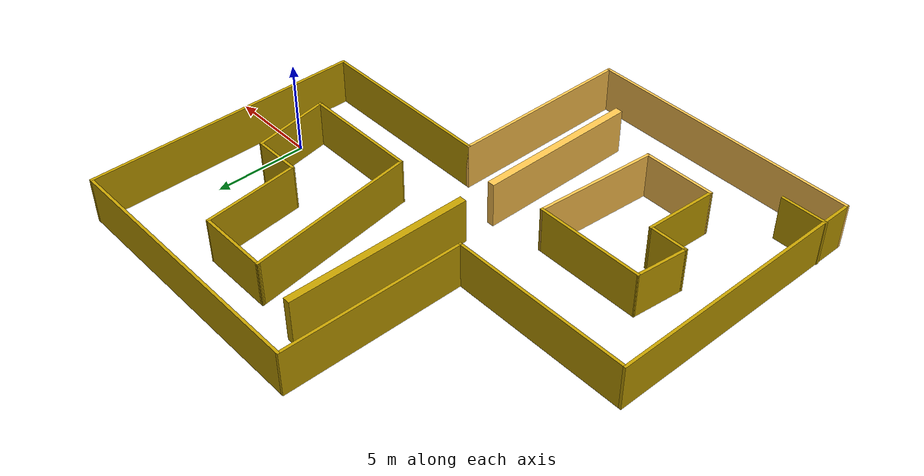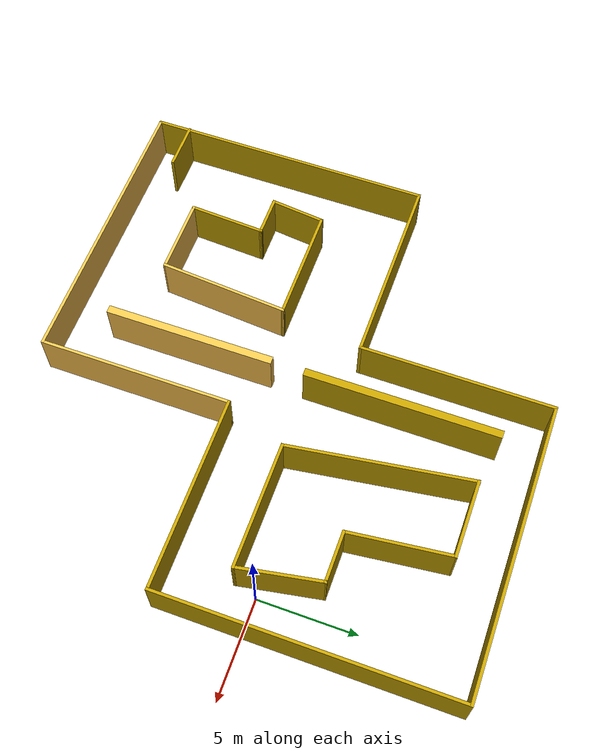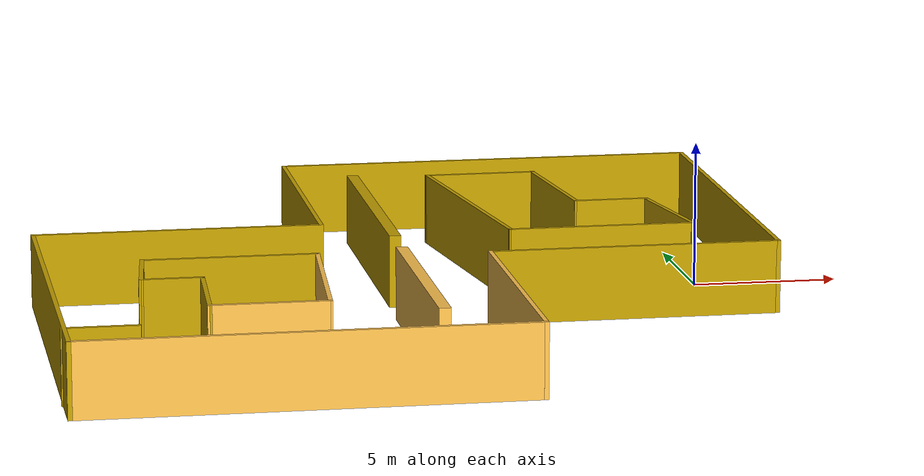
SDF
<?xml version='1.0'?>
<sdf version='1.6'>
  <model name='ext_wall_half'>
    <pose frame=''>-10.5024 -1.85284 0 0 -0 0</pose>
    <link name='Wall_1'>
      <collision name='Wall_1_Collision'>
        <geometry>
          <box>
            <size>15 0.15 2.5</size>
          </box>
        </geometry>
        <pose frame=''>0 0 1.25 0 -0 0</pose>
      </collision>
      <visual name='Wall_1_Visual'>
        <pose frame=''>0 0 1.25 0 -0 0</pose>
        <geometry>
          <box>
            <size>15 0.15 2.5</size>
          </box>
        </geometry>
        <material>
          <script>
            <uri>file://media/materials/scripts/gazebo.material</uri>
            <name>Gazebo/Grey</name>
          </script>
          <ambient>0.768627 0.627451 0 1</ambient>
        </material>
        <meta>
          <layer>0</layer>
        </meta>
      </visual>
      <pose frame=''>-12.3293 -4.92505 0 0 -0 -1.57076</pose>
    </link>
    <link name='Wall_10'>
      <collision name='Wall_10_Collision'>
        <geometry>
          <box>
            <size>10 0.15 2.5</size>
          </box>
        </geometry>
        <pose frame=''>0 0 1.25 0 -0 0</pose>
      </collision>
      <visual name='Wall_10_Visual'>
        <pose frame=''>0 0 1.25 0 -0 0</pose>
        <geometry>
          <box>
            <size>10 0.15 2.5</size>
          </box>
        </geometry>
        <material>
          <script>
            <uri>file://media/materials/scripts/gazebo.material</uri>
            <name>Gazebo/Grey</name>
          </script>
          <ambient>0.768627 0.627451 0 1</ambient>
        </material>
        <meta>
          <layer>0</layer>
        </meta>
      </visual>
      <pose frame=''>-2.47957 7.42484 0 0 -0 -1.5708</pose>
    </link>
    <link name='Wall_11'>
      <collision name='Wall_11_Collision'>
        <geometry>
          <box>
            <size>10 0.15 2.5</size>
          </box>
        </geometry>
        <pose frame=''>0 0 1.25 0 -0 0</pose>
      </collision>
      <visual name='Wall_11_Visual'>
        <pose frame=''>0 0 1.25 0 -0 0</pose>
        <geometry>
          <box>
            <size>10 0.15 2.5</size>
          </box>
        </geometry>
        <material>
          <script>
            <uri>file://media/materials/scripts/gazebo.material</uri>
            <name>Gazebo/Grey</name>
          </script>
          <ambient>0.768627 0.627451 0 1</ambient>
        </material>
        <meta>
          <layer>0</layer>
        </meta>
      </visual>
      <pose frame=''>-7.40456 2.49984 0 0 -0 3.14159</pose>
    </link>
    <link name='Wall_13'>
      <collision name='Wall_13_Collision'>
        <geometry>
          <box>
            <size>2.5 0.15 2.5</size>
          </box>
        </geometry>
        <pose frame=''>0 0 1.25 0 -0 0</pose>
      </collision>
      <visual name='Wall_13_Visual'>
        <pose frame=''>0 0 1.25 0 -0 0</pose>
        <geometry>
          <box>
            <size>2.5 0.15 2.5</size>
          </box>
        </geometry>
        <material>
          <script>
            <uri>file://media/materials/scripts/gazebo.material</uri>
            <name>Gazebo/Grey</name>
          </script>
          <ambient>0.768627 0.627451 0 1</ambient>
        </material>
        <meta>
          <layer>0</layer>
        </meta>
      </visual>
      <pose frame=''>-11.1959 -10.6578 0 0 -0 0</pose>
    </link>
    <link name='Wall_15'>
      <collision name='Wall_15_Collision'>
        <geometry>
          <box>
            <size>6 0.15 2.5</size>
          </box>
        </geometry>
        <pose frame=''>0 0 1.25 0 -0 0</pose>
      </collision>
      <visual name='Wall_15_Visual'>
        <pose frame=''>0 0 1.25 0 -0 0</pose>
        <geometry>
          <box>
            <size>6 0.15 2.5</size>
          </box>
        </geometry>
        <material>
          <script>
            <uri>file://media/materials/scripts/gazebo.material</uri>
            <name>Gazebo/Grey</name>
          </script>
          <ambient>0.768627 0.627451 0 1</ambient>
        </material>
        <meta>
          <layer>0</layer>
        </meta>
      </visual>
      <pose frame=''>-6.13327 -1.84354 0 0 -0 0</pose>
    </link>
    <link name='Wall_16'>
      <collision name='Wall_16_Collision'>
        <geometry>
          <box>
            <size>6.76891 0.15 2.5</size>
          </box>
        </geometry>
        <pose frame=''>0 0 1.25 0 -0 0</pose>
      </collision>
      <visual name='Wall_16_Visual'>
        <pose frame=''>0 0 1.25 0 -0 0</pose>
        <geometry>
          <box>
            <size>6.76891 0.15 2.5</size>
          </box>
        </geometry>
        <material>
          <script>
            <uri>file://media/materials/scripts/gazebo.material</uri>
            <name>Gazebo/Grey</name>
          </script>
          <ambient>1 0.764706 0.305882 1</ambient>
        </material>
        <meta>
          <layer>0</layer>
        </meta>
      </visual>
      <pose frame=''>-3.45827 -5.14354 0 0 -0 -1.64641</pose>
    </link>
    <link name='Wall_17'>
      <collision name='Wall_17_Collision'>
        <geometry>
          <box>
            <size>4 0.15 2.5</size>
          </box>
        </geometry>
        <pose frame=''>0 0 1.25 0 -0 0</pose>
      </collision>
      <visual name='Wall_17_Visual'>
        <pose frame=''>0 0 1.25 0 -0 0</pose>
        <geometry>
          <box>
            <size>4 0.15 2.5</size>
          </box>
        </geometry>
        <material>
          <script>
            <uri>file://media/materials/scripts/gazebo.material</uri>
            <name>Gazebo/Grey</name>
          </script>
          <ambient>1 0.764706 0.305882 1</ambient>
        </material>
        <meta>
          <layer>0</layer>
        </meta>
      </visual>
      <pose frame=''>-5.63327 -8.44354 0 0 -0 3.14159</pose>
    </link>
    <link name='Wall_18'>
      <collision name='Wall_18_Collision'>
        <geometry>
          <box>
            <size>4.00537 0.15 2.5</size>
          </box>
        </geometry>
        <pose frame=''>0 0 1.25 0 -0 0</pose>
      </collision>
      <visual name='Wall_18_Visual'>
        <pose frame=''>0 0 1.25 0 -0 0</pose>
        <geometry>
          <box>
            <size>4.00537 0.15 2.5</size>
          </box>
        </geometry>
        <material>
          <script>
            <uri>file://media/materials/scripts/gazebo.material</uri>
            <name>Gazebo/Grey</name>
          </script>
          <ambient>0.768627 0.627451 0 1</ambient>
        </material>
        <meta>
          <layer>0</layer>
        </meta>
      </visual>
      <pose frame=''>-7.45653 -6.51854 0 0 -0 1.51799</pose>
    </link>
    <link name='Wall_19'>
      <collision name='Wall_19_Collision'>
        <geometry>
          <box>
            <size>2.15 0.15 2.5</size>
          </box>
        </geometry>
        <pose frame=''>0 0 1.25 0 -0 0</pose>
      </collision>
      <visual name='Wall_19_Visual'>
        <pose frame=''>0 0 1.25 0 -0 0</pose>
        <geometry>
          <box>
            <size>2.15 0.15 2.5</size>
          </box>
        </geometry>
        <material>
          <script>
            <uri>file://media/materials/scripts/gazebo.material</uri>
            <name>Gazebo/Grey</name>
          </script>
          <ambient>0.768627 0.627451 0 1</ambient>
        </material>
        <meta>
          <layer>0</layer>
        </meta>
      </visual>
      <pose frame=''>-8.35479 -4.59354 0 0 -0 3.14159</pose>
    </link>
    <link name='Wall_2'>
      <collision name='Wall_2_Collision'>
        <geometry>
          <box>
            <size>15 0.15 2.5</size>
          </box>
        </geometry>
        <pose frame=''>0 0 1.25 0 -0 0</pose>
      </collision>
      <visual name='Wall_2_Visual'>
        <pose frame=''>0 0 1.25 0 -0 0</pose>
        <geometry>
          <box>
            <size>15 0.15 2.5</size>
          </box>
        </geometry>
        <material>
          <script>
            <uri>file://media/materials/scripts/gazebo.material</uri>
            <name>Gazebo/Grey</name>
          </script>
          <ambient>1 0.764706 0.305882 1</ambient>
        </material>
        <meta>
          <layer>0</layer>
        </meta>
      </visual>
      <pose frame=''>-4.9041 -12.3499 0 0 -0 0</pose>
    </link>
    <link name='Wall_20'>
      <collision name='Wall_20_Collision'>
        <geometry>
          <box>
            <size>2.91594 0.15 2.5</size>
          </box>
        </geometry>
        <pose frame=''>0 0 1.25 0 -0 0</pose>
      </collision>
      <visual name='Wall_20_Visual'>
        <pose frame=''>0 0 1.25 0 -0 0</pose>
        <geometry>
          <box>
            <size>2.91594 0.15 2.5</size>
          </box>
        </geometry>
        <material>
          <script>
            <uri>file://media/materials/scripts/gazebo.material</uri>
            <name>Gazebo/Grey</name>
          </script>
          <ambient>0.768627 0.627451 0 1</ambient>
        </material>
        <meta>
          <layer>0</layer>
        </meta>
      </visual>
      <pose frame=''>-9.20653 -3.21854 0 0 -0 1.46338</pose>
    </link>
    <link name='Wall_22'>
      <collision name='Wall_22_Collision'>
        <geometry>
          <box>
            <size>9.99951 0.4 2.5</size>
          </box>
        </geometry>
        <pose frame=''>0 0 1.25 0 -0 0</pose>
      </collision>
      <visual name='Wall_22_Visual'>
        <pose frame=''>0 0 1.25 0 -0 0</pose>
        <geometry>
          <box>
            <size>9.99951 0.4 2.5</size>
          </box>
        </geometry>
        <material>
          <script>
            <uri>file://media/materials/scripts/gazebo.material</uri>
            <name>Gazebo/Grey</name>
          </script>
          <ambient>0.768627 0.627451 0 1</ambient>
        </material>
        <meta>
          <layer>0</layer>
        </meta>
      </visual>
      <pose frame=''>-0.248565 5.34384 0 0 -0 -1.5708</pose>
    </link>
    <link name='Wall_24'>
      <collision name='Wall_24_Collision'>
        <geometry>
          <box>
            <size>8.75013 0.4 2.5</size>
          </box>
        </geometry>
        <pose frame=''>0 0 1.25 0 -0 0</pose>
      </collision>
      <visual name='Wall_24_Visual'>
        <pose frame=''>0 0 1.25 0 -0 0</pose>
        <geometry>
          <box>
            <size>8.75013 0.4 2.5</size>
          </box>
        </geometry>
        <material>
          <script>
            <uri>file://media/materials/scripts/gazebo.material</uri>
            <name>Gazebo/Grey</name>
          </script>
          <ambient>1 0.764706 0.305882 1</ambient>
        </material>
        <meta>
          <layer>0</layer>
        </meta>
      </visual>
      <pose frame=''>-0.294564 -5.71316 0 0 -0 -1.5708</pose>
    </link>
    <link name='Wall_26'>
      <collision name='Wall_26_Collision'>
        <geometry>
          <box>
            <size>9.44852 0.15 2.5</size>
          </box>
        </geometry>
        <pose frame=''>0 0 1.25 0 -0 0</pose>
      </collision>
      <visual name='Wall_26_Visual'>
        <pose frame=''>0 0 1.25 0 -0 0</pose>
        <geometry>
          <box>
            <size>9.44852 0.15 2.5</size>
          </box>
        </geometry>
        <material>
          <script>
            <uri>file://media/materials/scripts/gazebo.material</uri>
            <name>Gazebo/Grey</name>
          </script>
          <ambient>0.768627 0.627451 0 1</ambient>
        </material>
        <meta>
          <layer>0</layer>
        </meta>
      </visual>
      <pose frame=''>3.11596 5.29856 0 0 -0 -1.4251</pose>
    </link>
    <link name='Wall_27'>
      <collision name='Wall_27_Collision'>
        <geometry>
          <box>
            <size>6.5 0.15 2.5</size>
          </box>
        </geometry>
        <pose frame=''>0 0 1.25 0 -0 0</pose>
      </collision>
      <visual name='Wall_27_Visual'>
        <pose frame=''>0 0 1.25 0 -0 0</pose>
        <geometry>
          <box>
            <size>6.5 0.15 2.5</size>
          </box>
        </geometry>
        <material>
          <script>
            <uri>file://media/materials/scripts/gazebo.material</uri>
            <name>Gazebo/Grey</name>
          </script>
          <ambient>0.768627 0.627451 0 1</ambient>
        </material>
        <meta>
          <layer>0</layer>
        </meta>
      </visual>
      <pose frame=''>6.96596 0.69856 0 0 -0 0</pose>
    </link>
    <link name='Wall_28'>
      <collision name='Wall_28_Collision'>
        <geometry>
          <box>
            <size>4.31803 0.15 2.5</size>
          </box>
        </geometry>
        <pose frame=''>0 0 1.25 0 -0 0</pose>
      </collision>
      <visual name='Wall_28_Visual'>
        <pose frame=''>0 0 1.25 0 -0 0</pose>
        <geometry>
          <box>
            <size>4.31803 0.15 2.5</size>
          </box>
        </geometry>
        <material>
          <script>
            <uri>file://media/materials/scripts/gazebo.material</uri>
            <name>Gazebo/Grey</name>
          </script>
          <ambient>0.768627 0.627451 0 1</ambient>
        </material>
        <meta>
          <layer>0</layer>
        </meta>
      </visual>
      <pose frame=''>9.76595 2.74856 0 0 -0 1.75172</pose>
    </link>
    <link name='Wall_29'>
      <collision name='Wall_29_Collision'>
        <geometry>
          <box>
            <size>2.65 0.15 2.5</size>
          </box>
        </geometry>
        <pose frame=''>0 0 1.25 0 -0 0</pose>
      </collision>
      <visual name='Wall_29_Visual'>
        <pose frame=''>0 0 1.25 0 -0 0</pose>
        <geometry>
          <box>
            <size>2.65 0.15 2.5</size>
          </box>
        </geometry>
        <material>
          <script>
            <uri>file://media/materials/scripts/gazebo.material</uri>
            <name>Gazebo/Grey</name>
          </script>
          <ambient>0.768627 0.627451 0 1</ambient>
        </material>
        <meta>
          <layer>0</layer>
        </meta>
      </visual>
      <pose frame=''>8.14095 4.79856 0 0 -0 3.14159</pose>
    </link>
    <link name='Wall_30'>
      <collision name='Wall_30_Collision'>
        <geometry>
          <box>
            <size>5.28517 0.15 2.5</size>
          </box>
        </geometry>
        <pose frame=''>0 0 1.25 0 -0 0</pose>
      </collision>
      <visual name='Wall_30_Visual'>
        <pose frame=''>0 0 1.25 0 -0 0</pose>
        <geometry>
          <box>
            <size>5.28517 0.15 2.5</size>
          </box>
        </geometry>
        <material>
          <script>
            <uri>file://media/materials/scripts/gazebo.material</uri>
            <name>Gazebo/Grey</name>
          </script>
          <ambient>0.768627 0.627451 0 1</ambient>
        </material>
        <meta>
          <layer>0</layer>
        </meta>
      </visual>
      <pose frame=''>6.59096 7.34856 0 0 -0 1.6879</pose>
    </link>
    <link name='Wall_31'>
      <collision name='Wall_31_Collision'>
        <geometry>
          <box>
            <size>4 0.15 2.5</size>
          </box>
        </geometry>
        <pose frame=''>0 0 1.25 0 -0 0</pose>
      </collision>
      <visual name='Wall_31_Visual'>
        <pose frame=''>0 0 1.25 0 -0 0</pose>
        <geometry>
          <box>
            <size>4 0.15 2.5</size>
          </box>
        </geometry>
        <material>
          <script>
            <uri>file://media/materials/scripts/gazebo.material</uri>
            <name>Gazebo/Grey</name>
          </script>
          <ambient>0.768627 0.627451 0 1</ambient>
        </material>
        <meta>
          <layer>0</layer>
        </meta>
      </visual>
      <pose frame=''>4.36596 9.89856 0 0 -0 3.14159</pose>
    </link>
    <link name='Wall_4'>
      <collision name='Wall_4_Collision'>
        <geometry>
          <box>
            <size>10 0.15 2.5</size>
          </box>
        </geometry>
        <pose frame=''>0 0 1.25 0 -0 0</pose>
      </collision>
      <visual name='Wall_4_Visual'>
        <pose frame=''>0 0 1.25 0 -0 0</pose>
        <geometry>
          <box>
            <size>10 0.15 2.5</size>
          </box>
        </geometry>
        <material>
          <script>
            <uri>file://media/materials/scripts/gazebo.material</uri>
            <name>Gazebo/Grey</name>
          </script>
          <ambient>1 0.764706 0.305882 1</ambient>
        </material>
        <meta>
          <layer>0</layer>
        </meta>
      </visual>
      <pose frame=''>2.5209 -7.42495 0 0 -0 1.5708</pose>
    </link>
    <link name='Wall_5'>
      <collision name='Wall_5_Collision'>
        <geometry>
          <box>
            <size>10 0.15 2.5</size>
          </box>
        </geometry>
        <pose frame=''>0 0 1.25 0 -0 0</pose>
      </collision>
      <visual name='Wall_5_Visual'>
        <pose frame=''>0 0 1.25 0 -0 0</pose>
        <geometry>
          <box>
            <size>10 0.15 2.5</size>
          </box>
        </geometry>
        <material>
          <script>
            <uri>file://media/materials/scripts/gazebo.material</uri>
            <name>Gazebo/Grey</name>
          </script>
          <ambient>0.768627 0.627451 0 1</ambient>
        </material>
        <meta>
          <layer>0</layer>
        </meta>
      </visual>
      <pose frame=''>7.4459 -2.49995 0 0 -0 0</pose>
    </link>
    <link name='Wall_7'>
      <collision name='Wall_7_Collision'>
        <geometry>
          <box>
            <size>15 0.15 2.5</size>
          </box>
        </geometry>
        <pose frame=''>0 0 1.25 0 -0 0</pose>
      </collision>
      <visual name='Wall_7_Visual'>
        <pose frame=''>0 0 1.25 0 -0 0</pose>
        <geometry>
          <box>
            <size>15 0.15 2.5</size>
          </box>
        </geometry>
        <material>
          <script>
            <uri>file://media/materials/scripts/gazebo.material</uri>
            <name>Gazebo/Grey</name>
          </script>
          <ambient>0.768627 0.627451 0 1</ambient>
        </material>
        <meta>
          <layer>0</layer>
        </meta>
      </visual>
      <pose frame=''>12.3709 4.92505 0 0 -0 1.5708</pose>
    </link>
    <link name='Wall_8'>
      <collision name='Wall_8_Collision'>
        <geometry>
          <box>
            <size>15 0.15 2.5</size>
          </box>
        </geometry>
        <pose frame=''>0 0 1.25 0 -0 0</pose>
      </collision>
      <visual name='Wall_8_Visual'>
        <pose frame=''>0 0 1.25 0 -0 0</pose>
        <geometry>
          <box>
            <size>15 0.15 2.5</size>
          </box>
        </geometry>
        <material>
          <script>
            <uri>file://media/materials/scripts/gazebo.material</uri>
            <name>Gazebo/Grey</name>
          </script>
          <ambient>0.768627 0.627451 0 1</ambient>
        </material>
        <meta>
          <layer>0</layer>
        </meta>
      </visual>
      <pose frame=''>4.94567 12.3499 0 0 -0 -3.14158</pose>
    </link>
    <static>1</static>
  </model>
</sdf>
